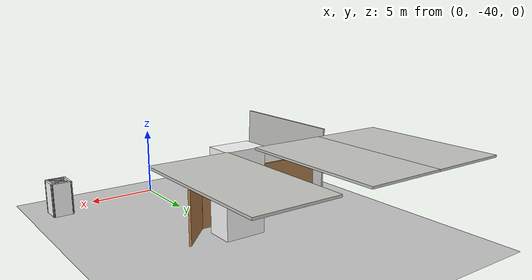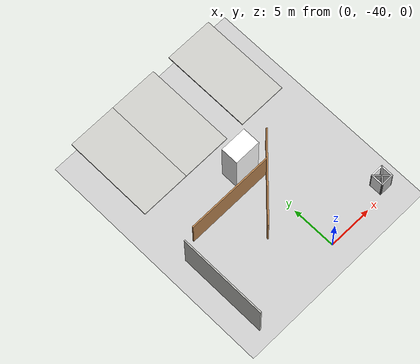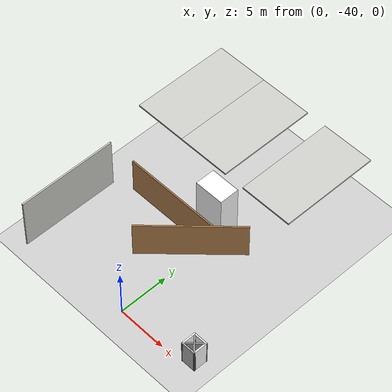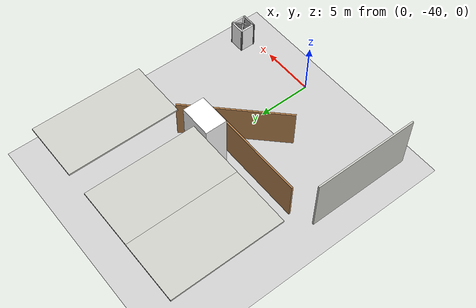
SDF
<sdf version="1.7">
 <world name="default">
  <model name="ground_plane">
   <static>1</static>
   <link name="link">
    <collision name="collision">
     <geometry><plane><normal>0 0 1</normal><size>100 100</size></plane></geometry>
     <surface>
      <contact><collide_bitmask>65535</collide_bitmask></contact>
      <friction><ode><mu>100</mu><mu2>50</mu2></ode></friction>
     </surface>
    </collision>
    <visual name="visual">
     <cast_shadows>0</cast_shadows>
     <geometry><plane><normal>0 0 1</normal><size>100 100</size></plane></geometry>
     <material>
      <script><uri>file://media/materials/scripts/gazebo.material</uri><name>Gazebo/Grey</name></script>
     </material>
    </visual>
   </link>
  </model>
  <model name="Untitled_0_clone_5">
   <link name="Wall_2">
    <pose>-0.3075 -1.8625 0 0 0 -1.5708</pose>
    <inertial>
     <mass>1</mass>
     <inertia><ixx>1</ixx><ixy>0</ixy><ixz>0</ixz><iyy>1</iyy><iyz>0</iyz><izz>1</izz></inertia>
    </inertial>
    <visual name="Wall_2_Visual">
     <pose>0 0 2.7 0 -0 0</pose>
     <geometry><box><size>10 0.15 5.4</size></box></geometry>
     <material>
      <script><uri>file://media/materials/scripts/gazebo.material</uri><name>Gazebo/CeilingTiled</name></script>
      <ambient>1 1 1 1</ambient>
      <shader type="pixel"><normal_map>__default__</normal_map></shader>
      <diffuse>1 1 1 1</diffuse>
      <specular>0 0 0 1</specular>
      <emissive>0 0 0 1</emissive>
     </material>
     <meta><layer>0</layer></meta>
    </visual>
    <collision name="Wall_2_Collision">
     <pose>0 0 2.7 0 -0 0</pose>
     <geometry><box><size>10 0.15 5.4</size></box></geometry>
     <surface>
      <friction>
       <ode><mu>1</mu><mu2>1</mu2><fdir1>0 0 0</fdir1><slip1>0</slip1><slip2>0</slip2></ode>
       <torsional>
        <coefficient>1</coefficient>
        <patch_radius>0</patch_radius>
        <surface_radius>0</surface_radius>
        <use_patch_radius>1</use_patch_radius>
        <ode><slip>0</slip></ode>
       </torsional>
      </friction>
      <bounce><restitution_coefficient>0</restitution_coefficient><threshold>1e+06</threshold></bounce>
      <contact>
       <collide_without_contact>0</collide_without_contact>
       <collide_without_contact_bitmask>1</collide_without_contact_bitmask>
       <collide_bitmask>1</collide_bitmask>
       <ode>
        <soft_cfm>0</soft_cfm>
        <soft_erp>0.2</soft_erp>
        <kp>1e+13</kp>
        <kd>1</kd>
        <max_vel>0.01</max_vel>
        <min_depth>0</min_depth>
       </ode>
       <bullet>
        <split_impulse>1</split_impulse>
        <split_impulse_penetration_threshold>-0.01</split_impulse_penetration_threshold>
        <soft_cfm>0</soft_cfm>
        <soft_erp>0.2</soft_erp>
        <kp>1e+13</kp>
        <kd>1</kd>
       </bullet>
      </contact>
     </surface>
    </collision>
   </link>
   <static>1</static>
   <pose>-10.6837 -34.234 0 0 -0 0</pose>
  </model>
  <model name="Untitled_clone_clone_1_clone_1_clone">
   <link name="Wall_0">
    <pose>-0.8775 -4.2975 0 0 -0 0</pose>
    <inertial>
     <mass>1</mass>
     <inertia><ixx>1</ixx><ixy>0</ixy><ixz>0</ixz><iyy>1</iyy><iyz>0</iyz><izz>1</izz></inertia>
    </inertial>
    <visual name="Wall_0_Visual">
     <pose>0 0 1.9 0 -0 0</pose>
     <geometry><box><size>10 0.15 3.8</size></box></geometry>
     <material>
      <script><uri>file://media/materials/scripts/gazebo.material</uri><name>Gazebo/Wood</name></script>
      <ambient>1 1 1 1</ambient>
      <shader type="pixel"><normal_map>__default__</normal_map></shader>
      <diffuse>1 1 1 1</diffuse>
      <specular>0.2 0.2 0.2 1</specular>
      <emissive>0 0 0 1</emissive>
     </material>
     <meta><layer>0</layer></meta>
    </visual>
    <collision name="Wall_0_Collision">
     <pose>0 0 1.9 0 -0 0</pose>
     <geometry><box><size>10 0.15 3.8</size></box></geometry>
     <surface>
      <friction>
       <ode><mu>1</mu><mu2>1</mu2><fdir1>0 0 0</fdir1><slip1>0</slip1><slip2>0</slip2></ode>
       <torsional>
        <coefficient>1</coefficient>
        <patch_radius>0</patch_radius>
        <surface_radius>0</surface_radius>
        <use_patch_radius>1</use_patch_radius>
        <ode><slip>0</slip></ode>
       </torsional>
      </friction>
      <bounce><restitution_coefficient>0</restitution_coefficient><threshold>1e+06</threshold></bounce>
      <contact>
       <collide_without_contact>0</collide_without_contact>
       <collide_without_contact_bitmask>1</collide_without_contact_bitmask>
       <collide_bitmask>1</collide_bitmask>
       <ode>
        <soft_cfm>0</soft_cfm>
        <soft_erp>0.2</soft_erp>
        <kp>1e+13</kp>
        <kd>1</kd>
        <max_vel>0.01</max_vel>
        <min_depth>0</min_depth>
       </ode>
       <bullet>
        <split_impulse>1</split_impulse>
        <split_impulse_penetration_threshold>-0.01</split_impulse_penetration_threshold>
        <soft_cfm>0</soft_cfm>
        <soft_erp>0.2</soft_erp>
        <kp>1e+13</kp>
        <kd>1</kd>
       </bullet>
      </contact>
     </surface>
    </collision>
   </link>
   <static>1</static>
   <pose>-3.26107 -25.9561 0 0 -0 0</pose>
  </model>
  <model name="Untitled_clone_clone_0_clone_0_clone">
   <link name="Wall_0">
    <pose>-0.8775 -4.2975 0 0 -0 0</pose>
    <inertial>
     <mass>1</mass>
     <inertia><ixx>1</ixx><ixy>0</ixy><ixz>0</ixz><iyy>1</iyy><iyz>0</iyz><izz>1</izz></inertia>
    </inertial>
    <visual name="Wall_0_Visual">
     <pose>0 0 1.9 0 -0 0</pose>
     <geometry><box><size>10 0.15 3.8</size></box></geometry>
     <material>
      <script><uri>file://media/materials/scripts/gazebo.material</uri><name>Gazebo/Wood</name></script>
      <ambient>1 1 1 1</ambient>
      <shader type="pixel"><normal_map>__default__</normal_map></shader>
      <diffuse>1 1 1 1</diffuse>
      <specular>0.2 0.2 0.2 1</specular>
      <emissive>0 0 0 1</emissive>
     </material>
     <meta><layer>0</layer></meta>
    </visual>
    <collision name="Wall_0_Collision">
     <pose>0 0 1.9 0 -0 0</pose>
     <geometry><box><size>10 0.15 3.8</size></box></geometry>
     <surface>
      <friction>
       <ode><mu>1</mu><mu2>1</mu2><fdir1>0 0 0</fdir1><slip1>0</slip1><slip2>0</slip2></ode>
       <torsional>
        <coefficient>1</coefficient>
        <patch_radius>0</patch_radius>
        <surface_radius>0</surface_radius>
        <use_patch_radius>1</use_patch_radius>
        <ode><slip>0</slip></ode>
       </torsional>
      </friction>
      <bounce><restitution_coefficient>0</restitution_coefficient><threshold>1e+06</threshold></bounce>
      <contact>
       <collide_without_contact>0</collide_without_contact>
       <collide_without_contact_bitmask>1</collide_without_contact_bitmask>
       <collide_bitmask>1</collide_bitmask>
       <ode>
        <soft_cfm>0</soft_cfm>
        <soft_erp>0.2</soft_erp>
        <kp>1e+13</kp>
        <kd>1</kd>
        <max_vel>0.01</max_vel>
        <min_depth>0</min_depth>
       </ode>
       <bullet>
        <split_impulse>1</split_impulse>
        <split_impulse_penetration_threshold>-0.01</split_impulse_penetration_threshold>
        <soft_cfm>0</soft_cfm>
        <soft_erp>0.2</soft_erp>
        <kp>1e+13</kp>
        <kd>1</kd>
       </bullet>
      </contact>
     </surface>
    </collision>
   </link>
   <static>1</static>
   <pose>-2.87201 -27.9616 0 0 -0 0.791662</pose>
  </model>
  <model name="Untitled_1_clone_2">
   <link name="Wall_10">
    <pose>4.92197 -3.43197 0 0 -0 1.5708</pose>
    <inertial>
     <mass>1</mass>
     <inertia><ixx>1</ixx><ixy>0</ixy><ixz>0</ixz><iyy>1</iyy><iyz>0</iyz><izz>1</izz></inertia>
    </inertial>
    <visual name="Wall_10_Visual">
     <pose>0 0 1.25 0 -0 0</pose>
     <geometry><box><size>1.5 0.15 2.5</size></box></geometry>
     <material>
      <script><uri>file://media/materials/scripts/gazebo.material</uri><name>Gazebo/CoM</name></script>
      <ambient>1 1 1 1</ambient>
      <shader type="pixel"><normal_map>__default__</normal_map></shader>
      <diffuse>1 1 1 1</diffuse>
      <specular>0 0 0 1</specular>
      <emissive>0 0 0 1</emissive>
     </material>
     <meta><layer>0</layer></meta>
    </visual>
    <collision name="Wall_10_Collision">
     <pose>0 0 1.25 0 -0 0</pose>
     <geometry><box><size>1.5 0.15 2.5</size></box></geometry>
     <surface>
      <friction>
       <ode><mu>1</mu><mu2>1</mu2><fdir1>0 0 0</fdir1><slip1>0</slip1><slip2>0</slip2></ode>
       <torsional>
        <coefficient>1</coefficient>
        <patch_radius>0</patch_radius>
        <surface_radius>0</surface_radius>
        <use_patch_radius>1</use_patch_radius>
        <ode><slip>0</slip></ode>
       </torsional>
      </friction>
      <bounce><restitution_coefficient>0</restitution_coefficient><threshold>1e+06</threshold></bounce>
      <contact>
       <collide_without_contact>0</collide_without_contact>
       <collide_without_contact_bitmask>1</collide_without_contact_bitmask>
       <collide_bitmask>1</collide_bitmask>
       <ode>
        <soft_cfm>0</soft_cfm>
        <soft_erp>0.2</soft_erp>
        <kp>1e+13</kp>
        <kd>1</kd>
        <max_vel>0.01</max_vel>
        <min_depth>0</min_depth>
       </ode>
       <bullet>
        <split_impulse>1</split_impulse>
        <split_impulse_penetration_threshold>-0.01</split_impulse_penetration_threshold>
        <soft_cfm>0</soft_cfm>
        <soft_erp>0.2</soft_erp>
        <kp>1e+13</kp>
        <kd>1</kd>
       </bullet>
      </contact>
     </surface>
    </collision>
   </link>
   <link name="Wall_11">
    <pose>5.59697 -3.43197 0 0 0 -0.785398</pose>
    <visual name="Wall_11_Visual">
     <pose>0 0 1.25 0 -0 0</pose>
     <geometry><box><size>2.05919 0.15 2.5</size></box></geometry>
     <material>
      <script><uri>file://media/materials/scripts/gazebo.material</uri><name>Gazebo/Grey</name></script>
      <ambient>1 1 1 1</ambient>
      <shader type="pixel"/>
     </material>
     <meta><layer>0</layer></meta>
    </visual>
    <collision name="Wall_11_Collision">
     <pose>0 0 1.25 0 -0 0</pose>
     <geometry><box><size>2.05919 0.15 2.5</size></box></geometry>
     <surface>
      <friction>
       <ode><mu>1</mu><mu2>1</mu2><fdir1>0 0 0</fdir1><slip1>0</slip1><slip2>0</slip2></ode>
       <torsional>
        <coefficient>1</coefficient>
        <patch_radius>0</patch_radius>
        <surface_radius>0</surface_radius>
        <use_patch_radius>1</use_patch_radius>
        <ode><slip>0</slip></ode>
       </torsional>
      </friction>
      <bounce><restitution_coefficient>0</restitution_coefficient><threshold>1e+06</threshold></bounce>
      <contact>
       <collide_without_contact>0</collide_without_contact>
       <collide_without_contact_bitmask>1</collide_without_contact_bitmask>
       <collide_bitmask>1</collide_bitmask>
       <ode>
        <soft_cfm>0</soft_cfm>
        <soft_erp>0.2</soft_erp>
        <kp>1e+13</kp>
        <kd>1</kd>
        <max_vel>0.01</max_vel>
        <min_depth>0</min_depth>
       </ode>
       <bullet>
        <split_impulse>1</split_impulse>
        <split_impulse_penetration_threshold>-0.01</split_impulse_penetration_threshold>
        <soft_cfm>0</soft_cfm>
        <soft_erp>0.2</soft_erp>
        <kp>1e+13</kp>
        <kd>1</kd>
       </bullet>
      </contact>
     </surface>
    </collision>
   </link>
   <link name="Wall_13">
    <pose>5.59697 -3.43197 0 0 -0 0.785398</pose>
    <visual name="Wall_13_Visual">
     <pose>0 0 1.25 0 -0 0</pose>
     <geometry><box><size>2.05919 0.15 2.5</size></box></geometry>
     <material>
      <script><uri>file://media/materials/scripts/gazebo.material</uri><name>Gazebo/Grey</name></script>
      <ambient>1 1 1 1</ambient>
      <shader type="pixel"/>
     </material>
     <meta><layer>0</layer></meta>
    </visual>
    <collision name="Wall_13_Collision">
     <pose>0 0 1.25 0 -0 0</pose>
     <geometry><box><size>2.05919 0.15 2.5</size></box></geometry>
     <surface>
      <friction>
       <ode><mu>1</mu><mu2>1</mu2><fdir1>0 0 0</fdir1><slip1>0</slip1><slip2>0</slip2></ode>
       <torsional>
        <coefficient>1</coefficient>
        <patch_radius>0</patch_radius>
        <surface_radius>0</surface_radius>
        <use_patch_radius>1</use_patch_radius>
        <ode><slip>0</slip></ode>
       </torsional>
      </friction>
      <bounce><restitution_coefficient>0</restitution_coefficient><threshold>1e+06</threshold></bounce>
      <contact>
       <collide_without_contact>0</collide_without_contact>
       <collide_without_contact_bitmask>1</collide_without_contact_bitmask>
       <collide_bitmask>1</collide_bitmask>
       <ode>
        <soft_cfm>0</soft_cfm>
        <soft_erp>0.2</soft_erp>
        <kp>1e+13</kp>
        <kd>1</kd>
        <max_vel>0.01</max_vel>
        <min_depth>0</min_depth>
       </ode>
       <bullet>
        <split_impulse>1</split_impulse>
        <split_impulse_penetration_threshold>-0.01</split_impulse_penetration_threshold>
        <soft_cfm>0</soft_cfm>
        <soft_erp>0.2</soft_erp>
        <kp>1e+13</kp>
        <kd>1</kd>
       </bullet>
      </contact>
     </surface>
    </collision>
   </link>
   <link name="Wall_7">
    <pose>5.59697 -2.75697 0 0 -0 0</pose>
    <inertial>
     <mass>1</mass>
     <inertia><ixx>1</ixx><ixy>0</ixy><ixz>0</ixz><iyy>1</iyy><iyz>0</iyz><izz>1</izz></inertia>
    </inertial>
    <visual name="Wall_7_Visual">
     <pose>0 0 1.25 0 -0 0</pose>
     <geometry><box><size>1.5 0.15 2.5</size></box></geometry>
     <material>
      <script><uri>file://media/materials/scripts/gazebo.material</uri><name>Gazebo/CoM</name></script>
      <ambient>1 1 1 1</ambient>
      <shader type="pixel"><normal_map>__default__</normal_map></shader>
      <diffuse>1 1 1 1</diffuse>
      <specular>0 0 0 1</specular>
      <emissive>0 0 0 1</emissive>
     </material>
     <meta><layer>0</layer></meta>
    </visual>
    <collision name="Wall_7_Collision">
     <pose>0 0 1.25 0 -0 0</pose>
     <geometry><box><size>1.5 0.15 2.5</size></box></geometry>
     <surface>
      <friction>
       <ode><mu>1</mu><mu2>1</mu2><fdir1>0 0 0</fdir1><slip1>0</slip1><slip2>0</slip2></ode>
       <torsional>
        <coefficient>1</coefficient>
        <patch_radius>0</patch_radius>
        <surface_radius>0</surface_radius>
        <use_patch_radius>1</use_patch_radius>
        <ode><slip>0</slip></ode>
       </torsional>
      </friction>
      <bounce><restitution_coefficient>0</restitution_coefficient><threshold>1e+06</threshold></bounce>
      <contact>
       <collide_without_contact>0</collide_without_contact>
       <collide_without_contact_bitmask>1</collide_without_contact_bitmask>
       <collide_bitmask>1</collide_bitmask>
       <ode>
        <soft_cfm>0</soft_cfm>
        <soft_erp>0.2</soft_erp>
        <kp>1e+13</kp>
        <kd>1</kd>
        <max_vel>0.01</max_vel>
        <min_depth>0</min_depth>
       </ode>
       <bullet>
        <split_impulse>1</split_impulse>
        <split_impulse_penetration_threshold>-0.01</split_impulse_penetration_threshold>
        <soft_cfm>0</soft_cfm>
        <soft_erp>0.2</soft_erp>
        <kp>1e+13</kp>
        <kd>1</kd>
       </bullet>
      </contact>
     </surface>
    </collision>
   </link>
   <link name="Wall_8">
    <pose>6.27197 -3.43197 0 0 0 -1.5708</pose>
    <inertial>
     <mass>1</mass>
     <inertia><ixx>1</ixx><ixy>0</ixy><ixz>0</ixz><iyy>1</iyy><iyz>0</iyz><izz>1</izz></inertia>
    </inertial>
    <visual name="Wall_8_Visual">
     <pose>0 0 1.25 0 -0 0</pose>
     <geometry><box><size>1.5 0.15 2.5</size></box></geometry>
     <material>
      <script><uri>file://media/materials/scripts/gazebo.material</uri><name>Gazebo/CoM</name></script>
      <ambient>1 1 1 1</ambient>
      <shader type="pixel"><normal_map>__default__</normal_map></shader>
      <diffuse>1 1 1 1</diffuse>
      <specular>0 0 0 1</specular>
      <emissive>0 0 0 1</emissive>
     </material>
     <meta><layer>0</layer></meta>
    </visual>
    <collision name="Wall_8_Collision">
     <pose>0 0 1.25 0 -0 0</pose>
     <geometry><box><size>1.5 0.15 2.5</size></box></geometry>
     <surface>
      <friction>
       <ode><mu>1</mu><mu2>1</mu2><fdir1>0 0 0</fdir1><slip1>0</slip1><slip2>0</slip2></ode>
       <torsional>
        <coefficient>1</coefficient>
        <patch_radius>0</patch_radius>
        <surface_radius>0</surface_radius>
        <use_patch_radius>1</use_patch_radius>
        <ode><slip>0</slip></ode>
       </torsional>
      </friction>
      <bounce><restitution_coefficient>0</restitution_coefficient><threshold>1e+06</threshold></bounce>
      <contact>
       <collide_without_contact>0</collide_without_contact>
       <collide_without_contact_bitmask>1</collide_without_contact_bitmask>
       <collide_bitmask>1</collide_bitmask>
       <ode>
        <soft_cfm>0</soft_cfm>
        <soft_erp>0.2</soft_erp>
        <kp>1e+13</kp>
        <kd>1</kd>
        <max_vel>0.01</max_vel>
        <min_depth>0</min_depth>
       </ode>
       <bullet>
        <split_impulse>1</split_impulse>
        <split_impulse_penetration_threshold>-0.01</split_impulse_penetration_threshold>
        <soft_cfm>0</soft_cfm>
        <soft_erp>0.2</soft_erp>
        <kp>1e+13</kp>
        <kd>1</kd>
       </bullet>
      </contact>
     </surface>
    </collision>
   </link>
   <link name="Wall_9">
    <pose>5.59697 -4.10697 0 0 -0 3.14159</pose>
    <inertial>
     <mass>1</mass>
     <inertia><ixx>1</ixx><ixy>0</ixy><ixz>0</ixz><iyy>1</iyy><iyz>0</iyz><izz>1</izz></inertia>
    </inertial>
    <visual name="Wall_9_Visual">
     <pose>0 0 1.25 0 -0 0</pose>
     <geometry><box><size>1.5 0.15 2.5</size></box></geometry>
     <material>
      <script><uri>file://media/materials/scripts/gazebo.material</uri><name>Gazebo/CoM</name></script>
      <ambient>1 1 1 1</ambient>
      <shader type="pixel"><normal_map>__default__</normal_map></shader>
      <diffuse>0.7 0.7 0.7 1</diffuse>
      <specular>0.01 0.01 0.01 1</specular>
      <emissive>0 0 0 1</emissive>
     </material>
     <meta><layer>0</layer></meta>
    </visual>
    <collision name="Wall_9_Collision">
     <pose>0 0 1.25 0 -0 0</pose>
     <geometry><box><size>1.5 0.15 2.5</size></box></geometry>
     <surface>
      <friction>
       <ode><mu>1</mu><mu2>1</mu2><fdir1>0 0 0</fdir1><slip1>0</slip1><slip2>0</slip2></ode>
       <torsional>
        <coefficient>1</coefficient>
        <patch_radius>0</patch_radius>
        <surface_radius>0</surface_radius>
        <use_patch_radius>1</use_patch_radius>
        <ode><slip>0</slip></ode>
       </torsional>
      </friction>
      <bounce><restitution_coefficient>0</restitution_coefficient><threshold>1e+06</threshold></bounce>
      <contact>
       <collide_without_contact>0</collide_without_contact>
       <collide_without_contact_bitmask>1</collide_without_contact_bitmask>
       <collide_bitmask>1</collide_bitmask>
       <ode>
        <soft_cfm>0</soft_cfm>
        <soft_erp>0.2</soft_erp>
        <kp>1e+13</kp>
        <kd>1</kd>
        <max_vel>0.01</max_vel>
        <min_depth>0</min_depth>
       </ode>
       <bullet>
        <split_impulse>1</split_impulse>
        <split_impulse_penetration_threshold>-0.01</split_impulse_penetration_threshold>
        <soft_cfm>0</soft_cfm>
        <soft_erp>0.2</soft_erp>
        <kp>1e+13</kp>
        <kd>1</kd>
       </bullet>
      </contact>
     </surface>
    </collision>
   </link>
   <static>1</static>
   <pose>2.17833 -35.5801 0 0 -0 0</pose>
  </model>
  <model name="Untitled_clone_clone_0_clone_clone_0_clone_0_clone_0_clone_0">
   <link name="Wall_0">
    <pose>-0.877501 -4.2975 0 0 -0 0</pose>
    <inertial>
     <mass>1</mass>
     <inertia><ixx>1</ixx><ixy>0</ixy><ixz>0</ixz><iyy>1</iyy><iyz>0</iyz><izz>1</izz></inertia>
    </inertial>
    <visual name="Wall_0_Visual">
     <pose>0 0 3 0 -0 0</pose>
     <geometry><box><size>3 2 6</size></box></geometry>
     <material>
      <script><uri>file://media/materials/scripts/gazebo.material</uri><name>Gazebo/CoM</name></script>
      <ambient>1 1 1 1</ambient>
      <shader type="pixel"><normal_map>__default__</normal_map></shader>
      <diffuse>1 1 1 1</diffuse>
      <specular>0.2 0.2 0.2 1</specular>
      <emissive>0 0 0 1</emissive>
     </material>
     <meta><layer>0</layer></meta>
    </visual>
    <collision name="Wall_0_Collision">
     <pose>0 0 3 0 -0 0</pose>
     <geometry><box><size>3 2 6</size></box></geometry>
     <surface>
      <friction>
       <ode><mu>1</mu><mu2>1</mu2><fdir1>0 0 0</fdir1><slip1>0</slip1><slip2>0</slip2></ode>
       <torsional>
        <coefficient>1</coefficient>
        <patch_radius>0</patch_radius>
        <surface_radius>0</surface_radius>
        <use_patch_radius>1</use_patch_radius>
        <ode><slip>0</slip></ode>
       </torsional>
      </friction>
      <bounce><restitution_coefficient>0</restitution_coefficient><threshold>1e+06</threshold></bounce>
      <contact>
       <collide_without_contact>0</collide_without_contact>
       <collide_without_contact_bitmask>1</collide_without_contact_bitmask>
       <collide_bitmask>1</collide_bitmask>
       <ode>
        <soft_cfm>0</soft_cfm>
        <soft_erp>0.2</soft_erp>
        <kp>1e+13</kp>
        <kd>1</kd>
        <max_vel>0.01</max_vel>
        <min_depth>0</min_depth>
       </ode>
       <bullet>
        <split_impulse>1</split_impulse>
        <split_impulse_penetration_threshold>-0.01</split_impulse_penetration_threshold>
        <soft_cfm>0</soft_cfm>
        <soft_erp>0.2</soft_erp>
        <kp>1e+13</kp>
        <kd>1</kd>
       </bullet>
      </contact>
     </surface>
    </collision>
   </link>
   <static>1</static>
   <pose>0.153816 -23.9381 0 0 -0 0</pose>
  </model>
  <model name="Untitled_0_clone_6_clone_1_clone_clone_1">
   <link name="Wall_2">
    <pose>-0.3075 -1.8625 0 0 0 -1.5708</pose>
    <inertial>
     <mass>1</mass>
     <inertia><ixx>1</ixx><ixy>0</ixy><ixz>0</ixz><iyy>1</iyy><iyz>0</iyz><izz>1</izz></inertia>
    </inertial>
    <visual name="Wall_2_Visual">
     <pose>0 0 2.7 0 -0 0</pose>
     <geometry><box><size>10 0.15 5.4</size></box></geometry>
     <material>
      <script><uri>file://media/materials/scripts/gazebo.material</uri><name>Gazebo/CeilingTiled</name></script>
      <ambient>1 1 1 1</ambient>
      <shader type="pixel"><normal_map>__default__</normal_map></shader>
      <diffuse>1 1 1 1</diffuse>
      <specular>0 0 0 1</specular>
      <emissive>0 0 0 1</emissive>
     </material>
     <meta><layer>0</layer></meta>
    </visual>
    <collision name="Wall_2_Collision">
     <pose>0 0 2.7 0 -0 0</pose>
     <geometry><box><size>10 0.15 5.4</size></box></geometry>
     <surface>
      <friction>
       <ode><mu>1</mu><mu2>1</mu2><fdir1>0 0 0</fdir1><slip1>0</slip1><slip2>0</slip2></ode>
       <torsional>
        <coefficient>1</coefficient>
        <patch_radius>0</patch_radius>
        <surface_radius>0</surface_radius>
        <use_patch_radius>1</use_patch_radius>
        <ode><slip>0</slip></ode>
       </torsional>
      </friction>
      <bounce><restitution_coefficient>0</restitution_coefficient><threshold>1e+06</threshold></bounce>
      <contact>
       <collide_without_contact>0</collide_without_contact>
       <collide_without_contact_bitmask>1</collide_without_contact_bitmask>
       <collide_bitmask>1</collide_bitmask>
       <ode>
        <soft_cfm>0</soft_cfm>
        <soft_erp>0.2</soft_erp>
        <kp>1e+13</kp>
        <kd>1</kd>
        <max_vel>0.01</max_vel>
        <min_depth>0</min_depth>
       </ode>
       <bullet>
        <split_impulse>1</split_impulse>
        <split_impulse_penetration_threshold>-0.01</split_impulse_penetration_threshold>
        <soft_cfm>0</soft_cfm>
        <soft_erp>0.2</soft_erp>
        <kp>1e+13</kp>
        <kd>1</kd>
       </bullet>
      </contact>
     </surface>
    </collision>
   </link>
   <static>1</static>
   <pose>0.944399 -19.9913 5.77469 3.14159 1.57079 3.14159</pose>
  </model>
  <model name="Untitled_0_clone_6_clone_1_clone_clone_2">
   <link name="Wall_2">
    <pose>-0.3075 -1.8625 0 0 0 -1.5708</pose>
    <inertial>
     <mass>1</mass>
     <inertia><ixx>1</ixx><ixy>0</ixy><ixz>0</ixz><iyy>1</iyy><iyz>0</iyz><izz>1</izz></inertia>
    </inertial>
    <visual name="Wall_2_Visual">
     <pose>0 0 2.7 0 -0 0</pose>
     <geometry><box><size>10 0.15 5.4</size></box></geometry>
     <material>
      <script><uri>file://media/materials/scripts/gazebo.material</uri><name>Gazebo/CeilingTiled</name></script>
      <ambient>1 1 1 1</ambient>
      <shader type="pixel"><normal_map>__default__</normal_map></shader>
      <diffuse>1 1 1 1</diffuse>
      <specular>0 0 0 1</specular>
      <emissive>0 0 0 1</emissive>
     </material>
     <meta><layer>0</layer></meta>
    </visual>
    <collision name="Wall_2_Collision">
     <pose>0 0 2.7 0 -0 0</pose>
     <geometry><box><size>10 0.15 5.4</size></box></geometry>
     <surface>
      <friction>
       <ode><mu>1</mu><mu2>1</mu2><fdir1>0 0 0</fdir1><slip1>0</slip1><slip2>0</slip2></ode>
       <torsional>
        <coefficient>1</coefficient>
        <patch_radius>0</patch_radius>
        <surface_radius>0</surface_radius>
        <use_patch_radius>1</use_patch_radius>
        <ode><slip>0</slip></ode>
       </torsional>
      </friction>
      <bounce><restitution_coefficient>0</restitution_coefficient><threshold>1e+06</threshold></bounce>
      <contact>
       <collide_without_contact>0</collide_without_contact>
       <collide_without_contact_bitmask>1</collide_without_contact_bitmask>
       <collide_bitmask>1</collide_bitmask>
       <ode>
        <soft_cfm>0</soft_cfm>
        <soft_erp>0.2</soft_erp>
        <kp>1e+13</kp>
        <kd>1</kd>
        <max_vel>0.01</max_vel>
        <min_depth>0</min_depth>
       </ode>
       <bullet>
        <split_impulse>1</split_impulse>
        <split_impulse_penetration_threshold>-0.01</split_impulse_penetration_threshold>
        <soft_cfm>0</soft_cfm>
        <soft_erp>0.2</soft_erp>
        <kp>1e+13</kp>
        <kd>1</kd>
       </bullet>
      </contact>
     </surface>
    </collision>
   </link>
   <static>1</static>
   <pose>-6.5393 -19.9932 5.77469 3.14159 1.57079 3.14159</pose>
  </model>
  <model name="Untitled_0_clone_6_clone_1_clone_clone_4">
   <link name="Wall_2">
    <pose>-0.3075 -1.8625 0 0 0 -1.5708</pose>
    <inertial>
     <mass>1</mass>
     <inertia><ixx>1</ixx><ixy>0</ixy><ixz>0</ixz><iyy>1</iyy><iyz>0</iyz><izz>1</izz></inertia>
    </inertial>
    <visual name="Wall_2_Visual">
     <pose>0 0 2.7 0 -0 0</pose>
     <geometry><box><size>10 0.15 5.4</size></box></geometry>
     <material>
      <script><uri>file://media/materials/scripts/gazebo.material</uri><name>Gazebo/CeilingTiled</name></script>
      <ambient>1 1 1 1</ambient>
      <shader type="pixel"><normal_map>__default__</normal_map></shader>
      <diffuse>1 1 1 1</diffuse>
      <specular>0 0 0 1</specular>
      <emissive>0 0 0 1</emissive>
     </material>
     <meta><layer>0</layer></meta>
    </visual>
    <collision name="Wall_2_Collision">
     <pose>0 0 2.7 0 -0 0</pose>
     <geometry><box><size>10 0.15 5.4</size></box></geometry>
     <surface>
      <friction>
       <ode><mu>1</mu><mu2>1</mu2><fdir1>0 0 0</fdir1><slip1>0</slip1><slip2>0</slip2></ode>
       <torsional>
        <coefficient>1</coefficient>
        <patch_radius>0</patch_radius>
        <surface_radius>0</surface_radius>
        <use_patch_radius>1</use_patch_radius>
        <ode><slip>0</slip></ode>
       </torsional>
      </friction>
      <bounce><restitution_coefficient>0</restitution_coefficient><threshold>1e+06</threshold></bounce>
      <contact>
       <collide_without_contact>0</collide_without_contact>
       <collide_without_contact_bitmask>1</collide_without_contact_bitmask>
       <collide_bitmask>1</collide_bitmask>
       <ode>
        <soft_cfm>0</soft_cfm>
        <soft_erp>0.2</soft_erp>
        <kp>1e+13</kp>
        <kd>1</kd>
        <max_vel>0.01</max_vel>
        <min_depth>0</min_depth>
       </ode>
       <bullet>
        <split_impulse>1</split_impulse>
        <split_impulse_penetration_threshold>-0.01</split_impulse_penetration_threshold>
        <soft_cfm>0</soft_cfm>
        <soft_erp>0.2</soft_erp>
        <kp>1e+13</kp>
        <kd>1</kd>
       </bullet>
      </contact>
     </surface>
    </collision>
   </link>
   <static>1</static>
   <pose>-11.9331 -19.9883 5.77469 3.14159 1.57079 3.14159</pose>
  </model>
 </world>
</sdf>
